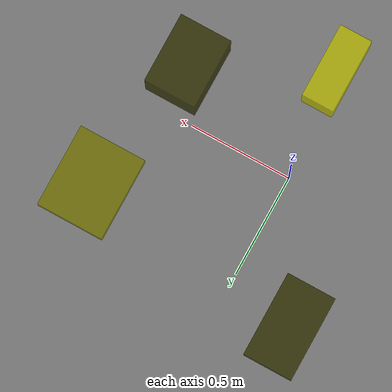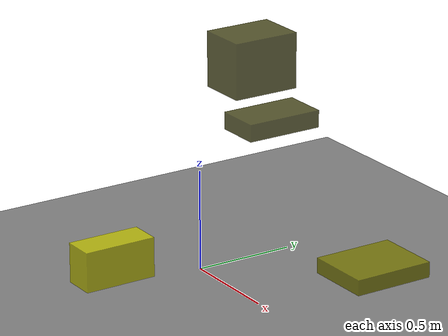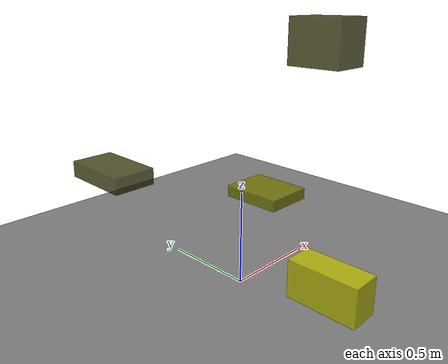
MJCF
<?xml version="1.0"?>
<mujoco model="obstacle_scene">
  <compiler angle="radian" coordinate="local"/>
  <option timestep="0.001" gravity="0 0 -9.81"/>

  <asset>
    <material name="obstacle_mat" rgba="0.8 0.8 0.0 0.8"/>
    <material name="ground_mat" rgba="0.5 0.5 0.5 1"/>
  </asset>

  <worldbody>
    <!-- Ground plane -->
    <geom name="ground" type="plane" size="3 3 0.1" material="ground_mat"/>

    <!-- Obstacles -->
    <body name="obstacle_0" pos="-0.335043 0.635097 0.536434">
      <geom name="obs_0" type="box" size="0.118035 0.201405 0.044547" rgba="0.2 0.2 0.0 0.8"/>
    </body>
    <body name="obstacle_1" pos="0.761960 0.464007 0.166124">
      <geom name="obs_1" type="box" size="0.164432 0.201450 0.038146" rgba="0.5 0.5 0.0 0.8"/>
    </body>
    <body name="obstacle_2" pos="0.039261 -0.510356 0.178166">
      <geom name="obs_2" type="box" size="0.079075 0.181121 0.098635" rgba="0.8 0.8 0.0 0.8"/>
    </body>
    <body name="obstacle_3" pos="0.557032 -0.075051 1.218708">
      <geom name="obs_3" type="box" size="0.118688 0.158456 0.129856" rgba="0.2 0.2 0.0 0.8"/>
    </body>
  </worldbody>
</mujoco>
